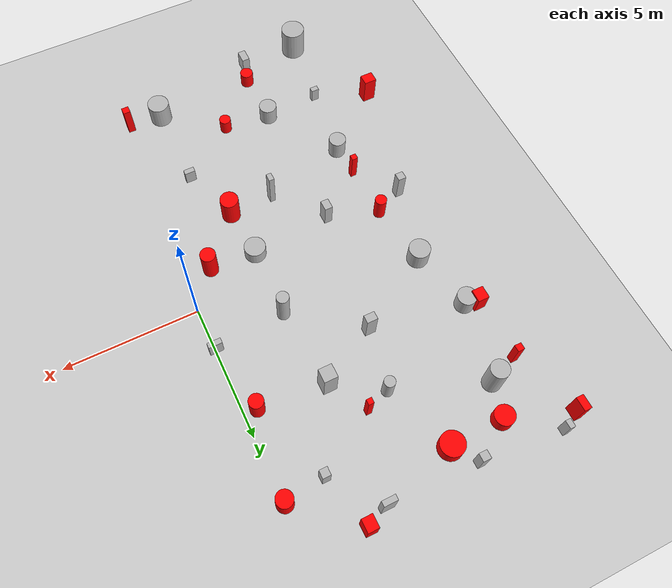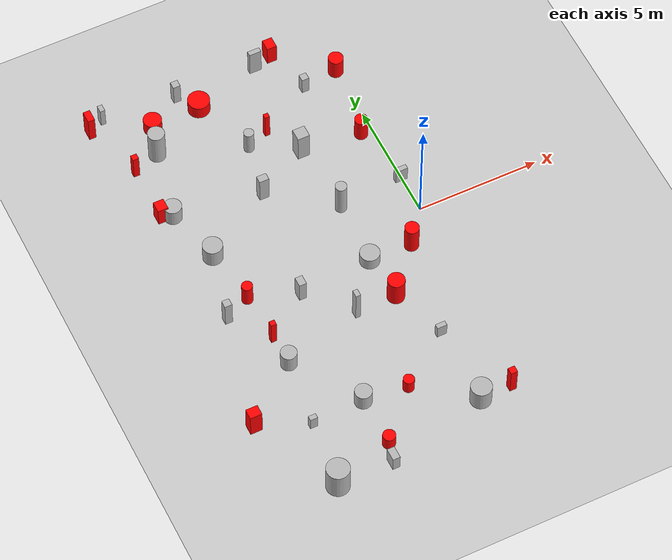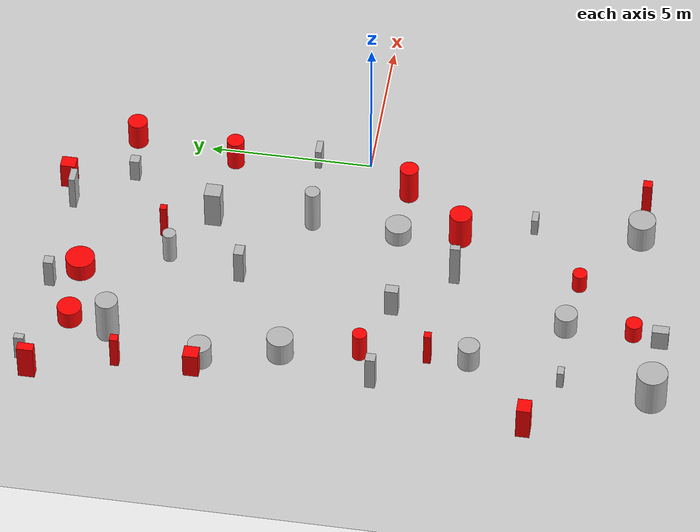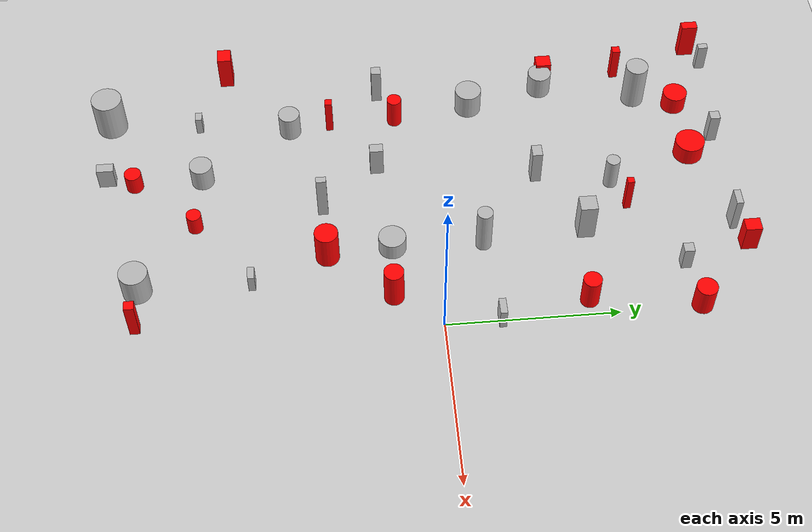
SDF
<sdf version="1.7">
 <world name="default">
  <model name="ground_plane">
   <static>1</static>
   <link name="link">
    <collision name="collision">
     <geometry><plane><normal>0 0 1</normal><size>100 100</size></plane></geometry>
     <surface>
      <contact><collide_bitmask>65535</collide_bitmask></contact>
      <friction><ode><mu>100</mu><mu2>50</mu2></ode></friction>
     </surface>
    </collision>
    <visual name="visual">
     <cast_shadows>0</cast_shadows>
     <geometry><plane><normal>0 0 1</normal><size>100 100</size></plane></geometry>
     <material>
      <script><uri>file://media/materials/scripts/gazebo.material</uri><name>Gazebo/Grey</name></script>
     </material>
    </visual>
   </link>
  </model>
  <model name="cylinder_3_0.9_0.9_1.3">
   <static>true</static>
   <pose>-8.257414005969185 -9.595632051193485 0.6390783754749252 0 0 0</pose>
   <link name="link">
    <collision name="collision">
     <geometry>
      <cylinder><radius>0.46100364447404574</radius><length>1.2781567509498504</length></cylinder>
     </geometry>
     <surface>
      <friction><ode><mu>1.0</mu><mu2>1.0</mu2></ode></friction>
      <contact><ode><kp>1e+5</kp><kd>1</kd></ode></contact>
     </surface>
    </collision>
    <visual name="visual">
     <geometry>
      <cylinder><radius>0.46100364447404574</radius><length>1.2781567509498504</length></cylinder>
     </geometry>
    </visual>
    <inertial>
     <mass>1.0</mass>
     <inertia><ixx>0.145833</ixx><ixy>0</ixy><ixz>0</ixz><iyy>0.145833</iyy><iyz>0</iyz><izz>0.125</izz></inertia>
    </inertial>
   </link>
  </model>
  <model name="cylinder_6_0.4_0.4_1.1">
   <static>true</static>
   <pose>-4.70888775790746 5.484673788684333 0.5342169744343243 0 0 0</pose>
   <link name="link">
    <collision name="collision">
     <geometry>
      <cylinder><radius>0.20563694013090655</radius><length>1.0684339488686485</length></cylinder>
     </geometry>
     <surface>
      <friction><ode><mu>1.0</mu><mu2>1.0</mu2></ode></friction>
      <contact><ode><kp>1e+5</kp><kd>1</kd></ode></contact>
     </surface>
    </collision>
    <visual name="visual">
     <geometry>
      <cylinder><radius>0.20563694013090655</radius><length>1.0684339488686485</length></cylinder>
     </geometry>
    </visual>
    <inertial>
     <mass>1.0</mass>
     <inertia><ixx>0.145833</ixx><ixy>0</ixy><ixz>0</ixz><iyy>0.145833</iyy><iyz>0</iyz><izz>0.125</izz></inertia>
    </inertial>
   </link>
  </model>
  <model name="cylinder_8_0.8_0.8_0.6">
   <static>true</static>
   <pose>-2.80984198852428 -1.259360924013171 0.2801127358146349 0 0 0</pose>
   <link name="link">
    <collision name="collision">
     <geometry>
      <cylinder><radius>0.4000300146337003</radius><length>0.5602254716292698</length></cylinder>
     </geometry>
     <surface>
      <friction><ode><mu>1.0</mu><mu2>1.0</mu2></ode></friction>
      <contact><ode><kp>1e+5</kp><kd>1</kd></ode></contact>
     </surface>
    </collision>
    <visual name="visual">
     <geometry>
      <cylinder><radius>0.4000300146337003</radius><length>0.5602254716292698</length></cylinder>
     </geometry>
    </visual>
    <inertial>
     <mass>1.0</mass>
     <inertia><ixx>0.145833</ixx><ixy>0</ixy><ixz>0</ixz><iyy>0.145833</iyy><iyz>0</iyz><izz>0.125</izz></inertia>
    </inertial>
   </link>
  </model>
  <model name="cylinder_9_0.5_0.5_1.5">
   <static>true</static>
   <pose>-2.725784581147548 1.4039354083575937 0.7441869190296131 0 0 0</pose>
   <link name="link">
    <collision name="collision">
     <geometry>
      <cylinder><radius>0.23061344322440844</radius><length>1.4883738380592262</length></cylinder>
     </geometry>
     <surface>
      <friction><ode><mu>1.0</mu><mu2>1.0</mu2></ode></friction>
      <contact><ode><kp>1e+5</kp><kd>1</kd></ode></contact>
     </surface>
    </collision>
    <visual name="visual">
     <geometry>
      <cylinder><radius>0.23061344322440844</radius><length>1.4883738380592262</length></cylinder>
     </geometry>
    </visual>
    <inertial>
     <mass>1.0</mass>
     <inertia><ixx>0.145833</ixx><ixy>0</ixy><ixz>0</ixz><iyy>0.145833</iyy><iyz>0</iyz><izz>0.125</izz></inertia>
    </inertial>
   </link>
  </model>
  <model name="cylinder_10_0.7_0.7_0.8">
   <static>true</static>
   <pose>-5.822464878103306 -6.773809642300074 0.37664580126989106 0 0 0</pose>
   <link name="link">
    <collision name="collision">
     <geometry>
      <cylinder><radius>0.3398932318568919</radius><length>0.7532916025397821</length></cylinder>
     </geometry>
     <surface>
      <friction><ode><mu>1.0</mu><mu2>1.0</mu2></ode></friction>
      <contact><ode><kp>1e+5</kp><kd>1</kd></ode></contact>
     </surface>
    </collision>
    <visual name="visual">
     <geometry>
      <cylinder><radius>0.3398932318568919</radius><length>0.7532916025397821</length></cylinder>
     </geometry>
    </visual>
    <inertial>
     <mass>1.0</mass>
     <inertia><ixx>0.145833</ixx><ixy>0</ixy><ixz>0</ixz><iyy>0.145833</iyy><iyz>0</iyz><izz>0.125</izz></inertia>
    </inertial>
   </link>
  </model>
  <model name="cylinder_11_0.7_0.7_1.5">
   <static>true</static>
   <pose>-8.057974484138775 6.758898149976076 0.7382297325066979 0 0 0</pose>
   <link name="link">
    <collision name="collision">
     <geometry>
      <cylinder><radius>0.3405953604943105</radius><length>1.4764594650133958</length></cylinder>
     </geometry>
     <surface>
      <friction><ode><mu>1.0</mu><mu2>1.0</mu2></ode></friction>
      <contact><ode><kp>1e+5</kp><kd>1</kd></ode></contact>
     </surface>
    </collision>
    <visual name="visual">
     <geometry>
      <cylinder><radius>0.3405953604943105</radius><length>1.4764594650133958</length></cylinder>
     </geometry>
    </visual>
    <inertial>
     <mass>1.0</mass>
     <inertia><ixx>0.145833</ixx><ixy>0</ixy><ixz>0</ixz><iyy>0.145833</iyy><iyz>0</iyz><izz>0.125</izz></inertia>
    </inertial>
   </link>
  </model>
  <model name="cylinder_13_0.6_0.6_0.8">
   <static>true</static>
   <pose>-7.596068775736622 -4.077196049557101 0.408991589696988 0 0 0</pose>
   <link name="link">
    <collision name="collision">
     <geometry><cylinder><radius>0.324278898354401</radius><length>0.817983179393976</length></cylinder></geometry>
     <surface>
      <friction><ode><mu>1.0</mu><mu2>1.0</mu2></ode></friction>
      <contact><ode><kp>1e+5</kp><kd>1</kd></ode></contact>
     </surface>
    </collision>
    <visual name="visual">
     <geometry><cylinder><radius>0.324278898354401</radius><length>0.817983179393976</length></cylinder></geometry>
    </visual>
    <inertial>
     <mass>1.0</mass>
     <inertia><ixx>0.145833</ixx><ixy>0</ixy><ixz>0</ixz><iyy>0.145833</iyy><iyz>0</iyz><izz>0.125</izz></inertia>
    </inertial>
   </link>
  </model>
  <model name="cylinder_14_0.7_0.7_0.8">
   <static>true</static>
   <pose>-8.717050073024312 3.849442387400398 0.3826947454697227 0 0 0</pose>
   <link name="link">
    <collision name="collision">
     <geometry>
      <cylinder><radius>0.3569744160400099</radius><length>0.7653894909394454</length></cylinder>
     </geometry>
     <surface>
      <friction><ode><mu>1.0</mu><mu2>1.0</mu2></ode></friction>
      <contact><ode><kp>1e+5</kp><kd>1</kd></ode></contact>
     </surface>
    </collision>
    <visual name="visual">
     <geometry>
      <cylinder><radius>0.3569744160400099</radius><length>0.7653894909394454</length></cylinder>
     </geometry>
    </visual>
    <inertial>
     <mass>1.0</mass>
     <inertia><ixx>0.145833</ixx><ixy>0</ixy><ixz>0</ixz><iyy>0.145833</iyy><iyz>0</iyz><izz>0.125</izz></inertia>
    </inertial>
   </link>
  </model>
  <model name="cylinder_15_0.8_0.8_0.8">
   <static>true</static>
   <pose>-8.121189784831166 1.5189299111235854 0.40928447622566183 0 0 0</pose>
   <link name="link">
    <collision name="collision">
     <geometry>
      <cylinder><radius>0.4002231139891045</radius><length>0.8185689524513237</length></cylinder>
     </geometry>
     <surface>
      <friction><ode><mu>1.0</mu><mu2>1.0</mu2></ode></friction>
      <contact><ode><kp>1e+5</kp><kd>1</kd></ode></contact>
     </surface>
    </collision>
    <visual name="visual">
     <geometry>
      <cylinder><radius>0.4002231139891045</radius><length>0.8185689524513237</length></cylinder>
     </geometry>
    </visual>
    <inertial>
     <mass>1.0</mass>
     <inertia><ixx>0.145833</ixx><ixy>0</ixy><ixz>0</ixz><iyy>0.145833</iyy><iyz>0</iyz><izz>0.125</izz></inertia>
    </inertial>
   </link>
  </model>
  <model name="cylinder_22_0.8_0.8_1.0">
   <static>true</static>
   <pose>-1.8563340554800067 -8.61666009089724 0.4767713413390344 0 0 0</pose>
   <link name="link">
    <collision name="collision">
     <geometry>
      <cylinder><radius>0.4166166798411044</radius><length>0.9535426826780689</length></cylinder>
     </geometry>
     <surface>
      <friction><ode><mu>1.0</mu><mu2>1.0</mu2></ode></friction>
      <contact><ode><kp>1e+5</kp><kd>1</kd></ode></contact>
     </surface>
    </collision>
    <visual name="visual">
     <geometry>
      <cylinder><radius>0.4166166798411044</radius><length>0.9535426826780689</length></cylinder>
     </geometry>
    </visual>
    <inertial>
     <mass>1.0</mass>
     <inertia><ixx>0.145833</ixx><ixy>0</ixy><ixz>0</ixz><iyy>0.145833</iyy><iyz>0</iyz><izz>0.125</izz></inertia>
    </inertial>
   </link>
  </model>
  <model name="box_0_0.3_0.5_0.7">
   <static>true</static>
   <pose>-6.000069502071998 -9.62956411078772 0.36196234403019006 0 0 0</pose>
   <link name="link">
    <collision name="collision">
     <geometry><box><size>0.3 0.5 0.7</size></box></geometry>
     <surface>
      <friction><ode><mu>1.0</mu><mu2>1.0</mu2></ode></friction>
      <contact><ode><kp>1e+5</kp><kd>1</kd></ode></contact>
     </surface>
    </collision>
    <visual name="visual"><geometry><box><size>0.3 0.5 0.7</size></box></geometry></visual>
    <inertial>
     <mass>1.0</mass>
     <inertia>
      <ixx>0.166667</ixx>
      <ixy>0</ixy>
      <ixz>0</ixz>
      <iyy>0.166667</iyy>
      <iyz>0</iyz>
      <izz>0.166667</izz>
     </inertia>
    </inertial>
   </link>
  </model>
  <model name="box_2_0.3_0.3_1.0">
   <static>true</static>
   <pose>-6.276139882393277 8.887447799678672 0.49522940430878354 0 0 0</pose>
   <link name="link">
    <collision name="collision">
     <geometry><box><size>0.3 0.3 1.0</size></box></geometry>
     <surface>
      <friction><ode><mu>1.0</mu><mu2>1.0</mu2></ode></friction>
      <contact><ode><kp>1e+5</kp><kd>1</kd></ode></contact>
     </surface>
    </collision>
    <visual name="visual"><geometry><box><size>0.3 0.3 1.0</size></box></geometry></visual>
    <inertial>
     <mass>1.0</mass>
     <inertia>
      <ixx>0.166667</ixx>
      <ixy>0</ixy>
      <ixz>0</ixz>
      <iyy>0.166667</iyy>
      <iyz>0</iyz>
      <izz>0.166667</izz>
     </inertia>
    </inertial>
   </link>
  </model>
  <model name="box_3_0.3_0.3_1.2">
   <static>true</static>
   <pose>-8.839416793522489 -1.3116674888375854 0.5981717444077297 0 0 0</pose>
   <link name="link">
    <collision name="collision">
     <geometry><box><size>0.3 0.3 1.2</size></box></geometry>
     <surface>
      <friction><ode><mu>1.0</mu><mu2>1.0</mu2></ode></friction>
      <contact><ode><kp>1e+5</kp><kd>1</kd></ode></contact>
     </surface>
    </collision>
    <visual name="visual"><geometry><box><size>0.3 0.3 1.2</size></box></geometry></visual>
    <inertial>
     <mass>1.0</mass>
     <inertia>
      <ixx>0.166667</ixx>
      <ixy>0</ixy>
      <ixz>0</ixz>
      <iyy>0.166667</iyy>
      <iyz>0</iyz>
      <izz>0.166667</izz>
     </inertia>
    </inertial>
   </link>
  </model>
  <model name="box_5_0.3_0.4_1.0">
   <static>true</static>
   <pose>-5.850598491177812 -1.5062906249698749 0.48178771218240535 0 0 0</pose>
   <link name="link">
    <collision name="collision">
     <geometry><box><size>0.3 0.4 1.0</size></box></geometry>
     <surface>
      <friction><ode><mu>1.0</mu><mu2>1.0</mu2></ode></friction>
      <contact><ode><kp>1e+5</kp><kd>1</kd></ode></contact>
     </surface>
    </collision>
    <visual name="visual"><geometry><box><size>0.3 0.4 1.0</size></box></geometry></visual>
    <inertial>
     <mass>1.0</mass>
     <inertia>
      <ixx>0.166667</ixx>
      <ixy>0</ixy>
      <ixz>0</ixz>
      <iyy>0.166667</iyy>
      <iyz>0</iyz>
      <izz>0.166667</izz>
     </inertia>
    </inertial>
   </link>
  </model>
  <model name="box_7_0.5_0.2_1.2">
   <static>true</static>
   <pose>-2.8877452430008876 8.80863890505626 0.6243318099252737 0 0 0</pose>
   <link name="link">
    <collision name="collision">
     <geometry><box><size>0.5 0.2 1.2</size></box></geometry>
     <surface>
      <friction><ode><mu>1.0</mu><mu2>1.0</mu2></ode></friction>
      <contact><ode><kp>1e+5</kp><kd>1</kd></ode></contact>
     </surface>
    </collision>
    <visual name="visual"><geometry><box><size>0.5 0.2 1.2</size></box></geometry></visual>
    <inertial>
     <mass>1.0</mass>
     <inertia>
      <ixx>0.166667</ixx>
      <ixy>0</ixy>
      <ixz>0</ixz>
      <iyy>0.166667</iyy>
      <iyz>0</iyz>
      <izz>0.166667</izz>
     </inertia>
    </inertial>
   </link>
  </model>
  <model name="box_8_0.4_0.2_0.6">
   <static>true</static>
   <pose>-1.8551765717238524 -5.355317156581146 0.27671359089341263 0 0 0</pose>
   <link name="link">
    <collision name="collision">
     <geometry><box><size>0.4 0.2 0.6</size></box></geometry>
     <surface>
      <friction><ode><mu>1.0</mu><mu2>1.0</mu2></ode></friction>
      <contact><ode><kp>1e+5</kp><kd>1</kd></ode></contact>
     </surface>
    </collision>
    <visual name="visual"><geometry><box><size>0.4 0.2 0.6</size></box></geometry></visual>
    <inertial>
     <mass>1.0</mass>
     <inertia>
      <ixx>0.166667</ixx>
      <ixy>0</ixy>
      <ixz>0</ixz>
      <iyy>0.166667</iyy>
      <iyz>0</iyz>
      <izz>0.166667</izz>
     </inertia>
    </inertial>
   </link>
  </model>
  <model name="box_11_0.2_0.3_0.9">
   <static>true</static>
   <pose>-9.333907469066077 9.17965443726947 0.42835344520127144 0 0 0</pose>
   <link name="link">
    <collision name="collision">
     <geometry><box><size>0.2 0.3 0.9</size></box></geometry>
     <surface>
      <friction><ode><mu>1.0</mu><mu2>1.0</mu2></ode></friction>
      <contact><ode><kp>1e+5</kp><kd>1</kd></ode></contact>
     </surface>
    </collision>
    <visual name="visual"><geometry><box><size>0.2 0.3 0.9</size></box></geometry></visual>
    <inertial>
     <mass>1.0</mass>
     <inertia>
      <ixx>0.166667</ixx>
      <ixy>0</ixy>
      <ixz>0</ixz>
      <iyy>0.166667</iyy>
      <iyz>0</iyz>
      <izz>0.166667</izz>
     </inertia>
    </inertial>
   </link>
  </model>
  <model name="box_13_0.4_0.3_1.2">
   <static>true</static>
   <pose>-5.17162759846852 3.2500914306535194 0.5829295587795938 0 0 0</pose>
   <link name="link">
    <collision name="collision">
     <geometry><box><size>0.4 0.3 1.2</size></box></geometry>
     <surface>
      <friction><ode><mu>1.0</mu><mu2>1.0</mu2></ode></friction>
      <contact><ode><kp>1e+5</kp><kd>1</kd></ode></contact>
     </surface>
    </collision>
    <visual name="visual"><geometry><box><size>0.4 0.3 1.2</size></box></geometry></visual>
    <inertial>
     <mass>1.0</mass>
     <inertia>
      <ixx>0.166667</ixx>
      <ixy>0</ixy>
      <ixz>0</ixz>
      <iyy>0.166667</iyy>
      <iyz>0</iyz>
      <izz>0.166667</izz>
     </inertia>
    </inertial>
   </link>
  </model>
  <model name="box_18_0.5_0.5_1.3">
   <static>true</static>
   <pose>-2.962140076139148 4.428133359199048 0.6565269316237303 0 0 0</pose>
   <link name="link">
    <collision name="collision">
     <geometry><box><size>0.5 0.5 1.3</size></box></geometry>
     <surface>
      <friction><ode><mu>1.0</mu><mu2>1.0</mu2></ode></friction>
      <contact><ode><kp>1e+5</kp><kd>1</kd></ode></contact>
     </surface>
    </collision>
    <visual name="visual"><geometry><box><size>0.5 0.5 1.3</size></box></geometry></visual>
    <inertial>
     <mass>1.0</mass>
     <inertia>
      <ixx>0.166667</ixx>
      <ixy>0</ixy>
      <ixz>0</ixz>
      <iyy>0.166667</iyy>
      <iyz>0</iyz>
      <izz>0.166667</izz>
     </inertia>
    </inertial>
   </link>
  </model>
  <model name="box_19_0.5_0.2_0.7">
   <static>true</static>
   <pose>-0.0444618434931634 1.6216385934412614 0.33451270306458064 0 0 0</pose>
   <link name="link">
    <collision name="collision">
     <geometry><box><size>0.5 0.2 0.7</size></box></geometry>
     <surface>
      <friction><ode><mu>1.0</mu><mu2>1.0</mu2></ode></friction>
      <contact><ode><kp>1e+5</kp><kd>1</kd></ode></contact>
     </surface>
    </collision>
    <visual name="visual"><geometry><box><size>0.5 0.2 0.7</size></box></geometry></visual>
    <inertial>
     <mass>1.0</mass>
     <inertia>
      <ixx>0.166667</ixx>
      <ixy>0</ixy>
      <ixz>0</ixz>
      <iyy>0.166667</iyy>
      <iyz>0</iyz>
      <izz>0.166667</izz>
     </inertia>
    </inertial>
   </link>
  </model>
  <model name="box_20_0.3_0.3_0.8">
   <static>true</static>
   <pose>-1.525872930890543 7.142498350091348 0.38562603838093207 0 0 0</pose>
   <link name="link">
    <collision name="collision">
     <geometry><box><size>0.3 0.3 0.8</size></box></geometry>
     <surface>
      <friction><ode><mu>1.0</mu><mu2>1.0</mu2></ode></friction>
      <contact><ode><kp>1e+5</kp><kd>1</kd></ode></contact>
     </surface>
    </collision>
    <visual name="visual"><geometry><box><size>0.3 0.3 0.8</size></box></geometry></visual>
    <inertial>
     <mass>1.0</mass>
     <inertia>
      <ixx>0.166667</ixx>
      <ixy>0</ixy>
      <ixz>0</ixz>
      <iyy>0.166667</iyy>
      <iyz>0</iyz>
      <izz>0.166667</izz>
     </inertia>
    </inertial>
   </link>
  </model>
  <model name="box_22_0.3_0.2_0.6">
   <static>true</static>
   <pose>-7.951724830951672 -6.87233302264074 0.28767953454167017 0 0 0</pose>
   <link name="link">
    <collision name="collision">
     <geometry><box><size>0.3 0.2 0.6</size></box></geometry>
     <surface>
      <friction><ode><mu>1.0</mu><mu2>1.0</mu2></ode></friction>
      <contact><ode><kp>1e+5</kp><kd>1</kd></ode></contact>
     </surface>
    </collision>
    <visual name="visual"><geometry><box><size>0.3 0.2 0.6</size></box></geometry></visual>
    <inertial>
     <mass>1.0</mass>
     <inertia>
      <ixx>0.166667</ixx>
      <ixy>0</ixy>
      <ixz>0</ixz>
      <iyy>0.166667</iyy>
      <iyz>0</iyz>
      <izz>0.166667</izz>
     </inertia>
    </inertial>
   </link>
  </model>
  <model name="box_23_0.2_0.3_1.5">
   <static>true</static>
   <pose>-4.343262956478342 -3.207379116676017 0.73159864763019 0 0 0</pose>
   <link name="link">
    <collision name="collision">
     <geometry><box><size>0.2 0.3 1.5</size></box></geometry>
     <surface>
      <friction><ode><mu>1.0</mu><mu2>1.0</mu2></ode></friction>
      <contact><ode><kp>1e+5</kp><kd>1</kd></ode></contact>
     </surface>
    </collision>
    <visual name="visual"><geometry><box><size>0.2 0.3 1.5</size></box></geometry></visual>
    <inertial>
     <mass>1.0</mass>
     <inertia>
      <ixx>0.166667</ixx>
      <ixy>0</ixy>
      <ixz>0</ixz>
      <iyy>0.166667</iyy>
      <iyz>0</iyz>
      <izz>0.166667</izz>
     </inertia>
    </inertial>
   </link>
  </model>
  <model name="dynamic_cylinder_1_0.6_0.6_1.2">
   <pose>-1.0624607210760182 -1.3384510179746307 0.6158720927164464 0 0 0</pose>
   <link name="link">
    <collision name="collision">
     <geometry>
      <cylinder><radius>0.28697403487758666</radius><length>1.2317441854328928</length></cylinder>
     </geometry>
     <surface>
      <friction><ode><mu>1.0</mu><mu2>1.0</mu2></ode></friction>
      <contact><ode><kp>1e+5</kp><kd>1</kd></ode></contact>
     </surface>
    </collision>
    <visual name="visual">
     <geometry>
      <cylinder><radius>0.28697403487758666</radius><length>1.2317441854328928</length></cylinder>
     </geometry>
     <material><ambient>1 0 0 1</ambient><diffuse>1 0 0 1</diffuse><specular>0.5 0.5 0.5 1</specular></material>
    </visual>
    <inertial>
     <mass>1.0</mass>
     <inertia><ixx>0.145833</ixx><ixy>0</ixy><ixz>0</ixz><iyy>0.145833</iyy><iyz>0</iyz><izz>0.125</izz></inertia>
    </inertial>
    <gravity>0</gravity>
   </link>
   <plugin name="obstacle_motion" filename="/home/he/quad/navigation/DRL-robot-navigation/catkin_ws/src/multi_robot_scenario/plugins/libobstaclePathPlugin.so">
    <orientation>false</orientation>
    <loop>1</loop>
    <velocity>0.4182640973994589</velocity>
    <path>
     <waypoint>-1.0624607210760182 -1.3384510179746307 0.6158720927164464</waypoint>
     <waypoint>-2.8530624064409116 8.29941540631237 0.6158720927164464</waypoint>
    </path>
   </plugin>
   <static>0</static>
  </model>
  <model name="dynamic_cylinder_3_0.6_0.6_0.9">
   <pose>-0.036408684741131125 7.335770865181914 0.4583458784543555 0 0 0</pose>
   <link name="link">
    <collision name="collision">
     <geometry><cylinder><radius>0.304457582823956</radius><length>0.916691756908711</length></cylinder></geometry>
     <surface>
      <friction><ode><mu>1.0</mu><mu2>1.0</mu2></ode></friction>
      <contact><ode><kp>1e+5</kp><kd>1</kd></ode></contact>
     </surface>
    </collision>
    <visual name="visual">
     <geometry><cylinder><radius>0.304457582823956</radius><length>0.916691756908711</length></cylinder></geometry>
     <material><ambient>1 0 0 1</ambient><diffuse>1 0 0 1</diffuse><specular>0.5 0.5 0.5 1</specular></material>
    </visual>
    <inertial>
     <mass>1.0</mass>
     <inertia><ixx>0.145833</ixx><ixy>0</ixy><ixz>0</ixz><iyy>0.145833</iyy><iyz>0</iyz><izz>0.125</izz></inertia>
    </inertial>
    <gravity>0</gravity>
   </link>
   <plugin name="obstacle_motion" filename="/home/he/quad/navigation/DRL-robot-navigation/catkin_ws/src/multi_robot_scenario/plugins/libobstaclePathPlugin.so">
    <orientation>false</orientation>
    <loop>1</loop>
    <velocity>0.4432515845386854</velocity>
    <path>
     <waypoint>-0.036408684741131125 7.335770865181914 0.4583458784543555</waypoint>
     <waypoint>2.554695123905688 -1.971441013889601 0.4583458784543555</waypoint>
    </path>
   </plugin>
   <static>0</static>
  </model>
  <model name="dynamic_cylinder_4_0.5_0.5_0.6">
   <pose>-5.770904084351729 -8.812336239884216 0.310060091081738 0 0 0</pose>
   <link name="link">
    <collision name="collision">
     <geometry>
      <cylinder><radius>0.25261162085457317</radius><length>0.620120182163476</length></cylinder>
     </geometry>
     <surface>
      <friction><ode><mu>1.0</mu><mu2>1.0</mu2></ode></friction>
      <contact><ode><kp>1e+5</kp><kd>1</kd></ode></contact>
     </surface>
    </collision>
    <visual name="visual">
     <geometry>
      <cylinder><radius>0.25261162085457317</radius><length>0.620120182163476</length></cylinder>
     </geometry>
     <material><ambient>1 0 0 1</ambient><diffuse>1 0 0 1</diffuse><specular>0.5 0.5 0.5 1</specular></material>
    </visual>
    <inertial>
     <mass>1.0</mass>
     <inertia><ixx>0.145833</ixx><ixy>0</ixy><ixz>0</ixz><iyy>0.145833</iyy><iyz>0</iyz><izz>0.125</izz></inertia>
    </inertial>
    <gravity>0</gravity>
   </link>
   <plugin name="obstacle_motion" filename="/home/he/quad/navigation/DRL-robot-navigation/catkin_ws/src/multi_robot_scenario/plugins/libobstaclePathPlugin.so">
    <orientation>false</orientation>
    <loop>1</loop>
    <velocity>0.30034212244883446</velocity>
    <path>
     <waypoint>-5.770904084351729 -8.812336239884216 0.310060091081738</waypoint>
     <waypoint>7.520536958411483 8.370929023806998 0.310060091081738</waypoint>
    </path>
   </plugin>
   <static>0</static>
  </model>
  <model name="dynamic_cylinder_5_0.7_0.7_0.6">
   <pose>-7.682030623482405 7.997334860000606 0.2982254303486921 0 0 0</pose>
   <link name="link">
    <collision name="collision">
     <geometry>
      <cylinder><radius>0.3699518320967488</radius><length>0.5964508606973842</length></cylinder>
     </geometry>
     <surface>
      <friction><ode><mu>1.0</mu><mu2>1.0</mu2></ode></friction>
      <contact><ode><kp>1e+5</kp><kd>1</kd></ode></contact>
     </surface>
    </collision>
    <visual name="visual">
     <geometry>
      <cylinder><radius>0.3699518320967488</radius><length>0.5964508606973842</length></cylinder>
     </geometry>
     <material><ambient>1 0 0 1</ambient><diffuse>1 0 0 1</diffuse><specular>0.5 0.5 0.5 1</specular></material>
    </visual>
    <inertial>
     <mass>1.0</mass>
     <inertia><ixx>0.145833</ixx><ixy>0</ixy><ixz>0</ixz><iyy>0.145833</iyy><iyz>0</iyz><izz>0.125</izz></inertia>
    </inertial>
    <gravity>0</gravity>
   </link>
   <plugin name="obstacle_motion" filename="/home/he/quad/navigation/DRL-robot-navigation/catkin_ws/src/multi_robot_scenario/plugins/libobstaclePathPlugin.so">
    <orientation>false</orientation>
    <loop>1</loop>
    <velocity>0.4590411947580757</velocity>
    <path>
     <waypoint>-7.682030623482405 7.997334860000606 0.2982254303486921</waypoint>
     <waypoint>-8.86245481709289 9.609713269380137 0.2982254303486921</waypoint>
    </path>
   </plugin>
   <static>0</static>
  </model>
  <model name="dynamic_cylinder_6_0.7_0.7_1.2">
   <pose>-2.641650243642532 -3.1531524674968425 0.5786594583085709 0 0 0</pose>
   <link name="link">
    <collision name="collision">
     <geometry>
      <cylinder><radius>0.34548969354742115</radius><length>1.1573189166171418</length></cylinder>
     </geometry>
     <surface>
      <friction><ode><mu>1.0</mu><mu2>1.0</mu2></ode></friction>
      <contact><ode><kp>1e+5</kp><kd>1</kd></ode></contact>
     </surface>
    </collision>
    <visual name="visual">
     <geometry>
      <cylinder><radius>0.34548969354742115</radius><length>1.1573189166171418</length></cylinder>
     </geometry>
     <material><ambient>1 0 0 1</ambient><diffuse>1 0 0 1</diffuse><specular>0.5 0.5 0.5 1</specular></material>
    </visual>
    <inertial>
     <mass>1.0</mass>
     <inertia><ixx>0.145833</ixx><ixy>0</ixy><ixz>0</ixz><iyy>0.145833</iyy><iyz>0</iyz><izz>0.125</izz></inertia>
    </inertial>
    <gravity>0</gravity>
   </link>
   <plugin name="obstacle_motion" filename="/home/he/quad/navigation/DRL-robot-navigation/catkin_ws/src/multi_robot_scenario/plugins/libobstaclePathPlugin.so">
    <orientation>false</orientation>
    <loop>1</loop>
    <velocity>0.355197825054824</velocity>
    <path>
     <waypoint>-2.641650243642532 -3.1531524674968425 0.5786594583085709</waypoint>
     <waypoint>5.147282864754175 -3.7085340999142558 0.5786594583085709</waypoint>
    </path>
   </plugin>
   <static>0</static>
  </model>
  <model name="dynamic_cylinder_7_0.9_0.9_0.6">
   <pose>-5.662594998179187 8.062992937031431 0.299866473617377 0 0 0</pose>
   <link name="link">
    <collision name="collision">
     <geometry>
      <cylinder><radius>0.44600673076092556</radius><length>0.599732947234754</length></cylinder>
     </geometry>
     <surface>
      <friction><ode><mu>1.0</mu><mu2>1.0</mu2></ode></friction>
      <contact><ode><kp>1e+5</kp><kd>1</kd></ode></contact>
     </surface>
    </collision>
    <visual name="visual">
     <geometry>
      <cylinder><radius>0.44600673076092556</radius><length>0.599732947234754</length></cylinder>
     </geometry>
     <material><ambient>1 0 0 1</ambient><diffuse>1 0 0 1</diffuse><specular>0.5 0.5 0.5 1</specular></material>
    </visual>
    <inertial>
     <mass>1.0</mass>
     <inertia><ixx>0.145833</ixx><ixy>0</ixy><ixz>0</ixz><iyy>0.145833</iyy><iyz>0</iyz><izz>0.125</izz></inertia>
    </inertial>
    <gravity>0</gravity>
   </link>
   <plugin name="obstacle_motion" filename="/home/he/quad/navigation/DRL-robot-navigation/catkin_ws/src/multi_robot_scenario/plugins/libobstaclePathPlugin.so">
    <orientation>false</orientation>
    <loop>1</loop>
    <velocity>0.34267673512545316</velocity>
    <path>
     <waypoint>-5.662594998179187 8.062992937031431 0.299866473617377</waypoint>
     <waypoint>-9.14151618782336 -3.3385593105136246 0.299866473617377</waypoint>
    </path>
   </plugin>
   <static>0</static>
  </model>
  <model name="dynamic_cylinder_8_0.4_0.4_0.6">
   <pose>-4.036252806738718 -6.981302053779168 0.32019197889967344 0 0 0</pose>
   <link name="link">
    <collision name="collision">
     <geometry>
      <cylinder><radius>0.2206555893480122</radius><length>0.6403839577993469</length></cylinder>
     </geometry>
     <surface>
      <friction><ode><mu>1.0</mu><mu2>1.0</mu2></ode></friction>
      <contact><ode><kp>1e+5</kp><kd>1</kd></ode></contact>
     </surface>
    </collision>
    <visual name="visual">
     <geometry>
      <cylinder><radius>0.2206555893480122</radius><length>0.6403839577993469</length></cylinder>
     </geometry>
     <material><ambient>1 0 0 1</ambient><diffuse>1 0 0 1</diffuse><specular>0.5 0.5 0.5 1</specular></material>
    </visual>
    <inertial>
     <mass>1.0</mass>
     <inertia><ixx>0.145833</ixx><ixy>0</ixy><ixz>0</ixz><iyy>0.145833</iyy><iyz>0</iyz><izz>0.125</izz></inertia>
    </inertial>
    <gravity>0</gravity>
   </link>
   <plugin name="obstacle_motion" filename="/home/he/quad/navigation/DRL-robot-navigation/catkin_ws/src/multi_robot_scenario/plugins/libobstaclePathPlugin.so">
    <orientation>false</orientation>
    <loop>1</loop>
    <velocity>0.2682087347232506</velocity>
    <path>
     <waypoint>-4.036252806738718 -6.981302053779168 0.32019197889967344</waypoint>
     <waypoint>-3.3946592860620157 6.277602838412719 0.32019197889967344</waypoint>
    </path>
   </plugin>
   <static>0</static>
  </model>
  <model name="dynamic_cylinder_10_0.4_0.4_1.0">
   <pose>-7.770078854025688 -0.8206027963586333 0.4912921208560505 0 0 0</pose>
   <link name="link">
    <collision name="collision">
     <geometry>
      <cylinder><radius>0.22075479763771685</radius><length>0.982584241712101</length></cylinder>
     </geometry>
     <surface>
      <friction><ode><mu>1.0</mu><mu2>1.0</mu2></ode></friction>
      <contact><ode><kp>1e+5</kp><kd>1</kd></ode></contact>
     </surface>
    </collision>
    <visual name="visual">
     <geometry>
      <cylinder><radius>0.22075479763771685</radius><length>0.982584241712101</length></cylinder>
     </geometry>
     <material><ambient>1 0 0 1</ambient><diffuse>1 0 0 1</diffuse><specular>0.5 0.5 0.5 1</specular></material>
    </visual>
    <inertial>
     <mass>1.0</mass>
     <inertia><ixx>0.145833</ixx><ixy>0</ixy><ixz>0</ixz><iyy>0.145833</iyy><iyz>0</iyz><izz>0.125</izz></inertia>
    </inertial>
    <gravity>0</gravity>
   </link>
   <plugin name="obstacle_motion" filename="/home/he/quad/navigation/DRL-robot-navigation/catkin_ws/src/multi_robot_scenario/plugins/libobstaclePathPlugin.so">
    <orientation>false</orientation>
    <loop>1</loop>
    <velocity>0.41894829065878025</velocity>
    <path>
     <waypoint>-7.770078854025688 -0.8206027963586333 0.4912921208560505</waypoint>
     <waypoint>-3.5533292390676374 -3.669985090927872 0.4912921208560505</waypoint>
    </path>
   </plugin>
   <static>0</static>
  </model>
  <model name="dynamic_cylinder_14_0.5_0.5_1.0">
   <pose>-0.483476082855546 4.175407818820974 0.5100407083178365 0 0 0</pose>
   <link name="link">
    <collision name="collision">
     <geometry>
      <cylinder><radius>0.26732408357625204</radius><length>1.020081416635673</length></cylinder>
     </geometry>
     <surface>
      <friction><ode><mu>1.0</mu><mu2>1.0</mu2></ode></friction>
      <contact><ode><kp>1e+5</kp><kd>1</kd></ode></contact>
     </surface>
    </collision>
    <visual name="visual">
     <geometry>
      <cylinder><radius>0.26732408357625204</radius><length>1.020081416635673</length></cylinder>
     </geometry>
     <material><ambient>1 0 0 1</ambient><diffuse>1 0 0 1</diffuse><specular>0.5 0.5 0.5 1</specular></material>
    </visual>
    <inertial>
     <mass>1.0</mass>
     <inertia><ixx>0.145833</ixx><ixy>0</ixy><ixz>0</ixz><iyy>0.145833</iyy><iyz>0</iyz><izz>0.125</izz></inertia>
    </inertial>
    <gravity>0</gravity>
   </link>
   <plugin name="obstacle_motion" filename="/home/he/quad/navigation/DRL-robot-navigation/catkin_ws/src/multi_robot_scenario/plugins/libobstaclePathPlugin.so">
    <orientation>false</orientation>
    <loop>1</loop>
    <velocity>0.2091983144977154</velocity>
    <path>
     <waypoint>-0.483476082855546 4.175407818820974 0.5100407083178365</waypoint>
     <waypoint>-9.120491359518187 7.5904296604746015 0.5100407083178365</waypoint>
    </path>
   </plugin>
   <static>0</static>
  </model>
  <model name="dynamic_box_1_0.3_0.3_1.2">
   <pose>-0.5708536129146928 -8.638138015157867 0.6096945310019868 0 0 0</pose>
   <link name="link">
    <collision name="collision">
     <geometry><box><size>0.2763147203352873 0.27959099736111426 1.2193890620039736</size></box></geometry>
     <surface>
      <friction><ode><mu>1.0</mu><mu2>1.0</mu2></ode></friction>
      <contact><ode><kp>1e+5</kp><kd>1</kd></ode></contact>
     </surface>
    </collision>
    <visual name="visual">
     <geometry><box><size>0.2763147203352873 0.27959099736111426 1.2193890620039736</size></box></geometry>
     <material><ambient>1 0 0 1</ambient><diffuse>1 0 0 1</diffuse><specular>0.5 0.5 0.5 1</specular></material>
    </visual>
    <inertial>
     <mass>1.0</mass>
     <inertia>
      <ixx>0.166667</ixx>
      <ixy>0</ixy>
      <ixz>0</ixz>
      <iyy>0.166667</iyy>
      <iyz>0</iyz>
      <izz>0.166667</izz>
     </inertia>
    </inertial>
    <gravity>0</gravity>
   </link>
   <plugin name="obstacle_motion" filename="/home/he/quad/navigation/DRL-robot-navigation/catkin_ws/src/multi_robot_scenario/plugins/libobstaclePathPlugin.so">
    <orientation>false</orientation>
    <loop>1</loop>
    <velocity>0.3049978530890507</velocity>
    <path>
     <waypoint>-0.5708536129146928 -8.638138015157867 0.6096945310019868</waypoint>
     <waypoint>8.877017147016389 9.298498816968792 0.6096945310019868</waypoint>
    </path>
   </plugin>
   <static>0</static>
  </model>
  <model name="dynamic_box_2_0.2_0.2_1.2">
   <pose>-3.7874156341738736 5.824548620382245 0.6024740309613797 0 0 0</pose>
   <link name="link">
    <collision name="collision">
     <geometry><box><size>0.20159301428440035 0.20340653855365778 1.2049480619227595</size></box></geometry>
     <surface>
      <friction><ode><mu>1.0</mu><mu2>1.0</mu2></ode></friction>
      <contact><ode><kp>1e+5</kp><kd>1</kd></ode></contact>
     </surface>
    </collision>
    <visual name="visual">
     <geometry><box><size>0.20159301428440035 0.20340653855365778 1.2049480619227595</size></box></geometry>
     <material><ambient>1 0 0 1</ambient><diffuse>1 0 0 1</diffuse><specular>0.5 0.5 0.5 1</specular></material>
    </visual>
    <inertial>
     <mass>1.0</mass>
     <inertia>
      <ixx>0.166667</ixx>
      <ixy>0</ixy>
      <ixz>0</ixz>
      <iyy>0.166667</iyy>
      <iyz>0</iyz>
      <izz>0.166667</izz>
     </inertia>
    </inertial>
    <gravity>0</gravity>
   </link>
   <plugin name="obstacle_motion" filename="/home/he/quad/navigation/DRL-robot-navigation/catkin_ws/src/multi_robot_scenario/plugins/libobstaclePathPlugin.so">
    <orientation>false</orientation>
    <loop>1</loop>
    <velocity>0.32559105907100794</velocity>
    <path>
     <waypoint>-3.7874156341738736 5.824548620382245 0.6024740309613797</waypoint>
     <waypoint>4.3028650405072 1.1610247331452506 0.6024740309613797</waypoint>
    </path>
   </plugin>
   <static>0</static>
  </model>
  <model name="dynamic_box_3_0.3_0.5_1.2">
   <pose>-9.98671562819591 8.833355907795127 0.5957540539157676 0 0 0</pose>
   <link name="link">
    <collision name="collision">
     <geometry><box><size>0.27939487940084007 0.4925284040636139 1.1915081078315353</size></box></geometry>
     <surface>
      <friction><ode><mu>1.0</mu><mu2>1.0</mu2></ode></friction>
      <contact><ode><kp>1e+5</kp><kd>1</kd></ode></contact>
     </surface>
    </collision>
    <visual name="visual">
     <geometry><box><size>0.27939487940084007 0.4925284040636139 1.1915081078315353</size></box></geometry>
     <material><ambient>1 0 0 1</ambient><diffuse>1 0 0 1</diffuse><specular>0.5 0.5 0.5 1</specular></material>
    </visual>
    <inertial>
     <mass>1.0</mass>
     <inertia>
      <ixx>0.166667</ixx>
      <ixy>0</ixy>
      <ixz>0</ixz>
      <iyy>0.166667</iyy>
      <iyz>0</iyz>
      <izz>0.166667</izz>
     </inertia>
    </inertial>
    <gravity>0</gravity>
   </link>
   <plugin name="obstacle_motion" filename="/home/he/quad/navigation/DRL-robot-navigation/catkin_ws/src/multi_robot_scenario/plugins/libobstaclePathPlugin.so">
    <orientation>false</orientation>
    <loop>1</loop>
    <velocity>0.23267112165239787</velocity>
    <path>
     <waypoint>-9.98671562819591 8.833355907795127 0.5957540539157676</waypoint>
     <waypoint>-4.4334940335977135 -6.28204794289005 0.5957540539157676</waypoint>
    </path>
   </plugin>
   <static>0</static>
  </model>
  <model name="dynamic_box_5_0.4_0.5_0.9">
   <pose>-9.141876191948837 4.017112988954754 0.4271124109136314 0 0 0</pose>
   <link name="link">
    <collision name="collision">
     <geometry><box><size>0.4264703312412705 0.46550655536354185 0.8542248218272628</size></box></geometry>
     <surface>
      <friction><ode><mu>1.0</mu><mu2>1.0</mu2></ode></friction>
      <contact><ode><kp>1e+5</kp><kd>1</kd></ode></contact>
     </surface>
    </collision>
    <visual name="visual">
     <geometry><box><size>0.4264703312412705 0.46550655536354185 0.8542248218272628</size></box></geometry>
     <material><ambient>1 0 0 1</ambient><diffuse>1 0 0 1</diffuse><specular>0.5 0.5 0.5 1</specular></material>
    </visual>
    <inertial>
     <mass>1.0</mass>
     <inertia>
      <ixx>0.166667</ixx>
      <ixy>0</ixy>
      <ixz>0</ixz>
      <iyy>0.166667</iyy>
      <iyz>0</iyz>
      <izz>0.166667</izz>
     </inertia>
    </inertial>
    <gravity>0</gravity>
   </link>
   <plugin name="obstacle_motion" filename="/home/he/quad/navigation/DRL-robot-navigation/catkin_ws/src/multi_robot_scenario/plugins/libobstaclePathPlugin.so">
    <orientation>false</orientation>
    <loop>1</loop>
    <velocity>0.2360832034938409</velocity>
    <path>
     <waypoint>-9.141876191948837 4.017112988954754 0.4271124109136314</waypoint>
     <waypoint>8.265686817709618 0.49154134957252005 0.4271124109136314</waypoint>
    </path>
   </plugin>
   <static>0</static>
  </model>
  <model name="dynamic_box_6_0.5_0.4_1.1">
   <pose>-9.958707288511565 -6.021773306662808 0.5691950528884743 0 0 0</pose>
   <link name="link">
    <collision name="collision">
     <geometry><box><size>0.4843465661334769 0.41856761898484607 1.1383901057769485</size></box></geometry>
     <surface>
      <friction><ode><mu>1.0</mu><mu2>1.0</mu2></ode></friction>
      <contact><ode><kp>1e+5</kp><kd>1</kd></ode></contact>
     </surface>
    </collision>
    <visual name="visual">
     <geometry><box><size>0.4843465661334769 0.41856761898484607 1.1383901057769485</size></box></geometry>
     <material><ambient>1 0 0 1</ambient><diffuse>1 0 0 1</diffuse><specular>0.5 0.5 0.5 1</specular></material>
    </visual>
    <inertial>
     <mass>1.0</mass>
     <inertia>
      <ixx>0.166667</ixx>
      <ixy>0</ixy>
      <ixz>0</ixz>
      <iyy>0.166667</iyy>
      <iyz>0</iyz>
      <izz>0.166667</izz>
     </inertia>
    </inertial>
    <gravity>0</gravity>
   </link>
   <plugin name="obstacle_motion" filename="/home/he/quad/navigation/DRL-robot-navigation/catkin_ws/src/multi_robot_scenario/plugins/libobstaclePathPlugin.so">
    <orientation>false</orientation>
    <loop>1</loop>
    <velocity>0.28425784838967283</velocity>
    <path>
     <waypoint>-9.958707288511565 -6.021773306662808 0.5691950528884743</waypoint>
     <waypoint>9.122463191199198 -3.3911885479431225 0.5691950528884743</waypoint>
    </path>
   </plugin>
   <static>0</static>
  </model>
  <model name="dynamic_box_10_0.3_0.2_1.1">
   <pose>-9.176404173437566 6.328420624287116 0.5635803557309291 0 0 0</pose>
   <link name="link">
    <collision name="collision">
     <geometry><box><size>0.2509458509515144 0.24451368130321272 1.1271607114618583</size></box></geometry>
     <surface>
      <friction><ode><mu>1.0</mu><mu2>1.0</mu2></ode></friction>
      <contact><ode><kp>1e+5</kp><kd>1</kd></ode></contact>
     </surface>
    </collision>
    <visual name="visual">
     <geometry><box><size>0.2509458509515144 0.24451368130321272 1.1271607114618583</size></box></geometry>
     <material><ambient>1 0 0 1</ambient><diffuse>1 0 0 1</diffuse><specular>0.5 0.5 0.5 1</specular></material>
    </visual>
    <inertial>
     <mass>1.0</mass>
     <inertia>
      <ixx>0.166667</ixx>
      <ixy>0</ixy>
      <ixz>0</ixz>
      <iyy>0.166667</iyy>
      <iyz>0</iyz>
      <izz>0.166667</izz>
     </inertia>
    </inertial>
    <gravity>0</gravity>
   </link>
   <plugin name="obstacle_motion" filename="/home/he/quad/navigation/DRL-robot-navigation/catkin_ws/src/multi_robot_scenario/plugins/libobstaclePathPlugin.so">
    <orientation>false</orientation>
    <loop>1</loop>
    <velocity>0.3507359222938692</velocity>
    <path>
     <waypoint>-9.176404173437566 6.328420624287116 0.5635803557309291</waypoint>
     <waypoint>6.1512760831974695 -8.979853823424884 0.5635803557309291</waypoint>
    </path>
   </plugin>
   <static>0</static>
  </model>
  <model name="dynamic_box_12_0.2_0.2_1.2">
   <pose>-7.668827751408029 -2.847219303035624 0.5820985525405745 0 0 0</pose>
   <link name="link">
    <collision name="collision">
     <geometry><box><size>0.22573838015595055 0.21880665860709217 1.164197105081149</size></box></geometry>
     <surface>
      <friction><ode><mu>1.0</mu><mu2>1.0</mu2></ode></friction>
      <contact><ode><kp>1e+5</kp><kd>1</kd></ode></contact>
     </surface>
    </collision>
    <visual name="visual">
     <geometry><box><size>0.22573838015595055 0.21880665860709217 1.164197105081149</size></box></geometry>
     <material><ambient>1 0 0 1</ambient><diffuse>1 0 0 1</diffuse><specular>0.5 0.5 0.5 1</specular></material>
    </visual>
    <inertial>
     <mass>1.0</mass>
     <inertia>
      <ixx>0.166667</ixx>
      <ixy>0</ixy>
      <ixz>0</ixz>
      <iyy>0.166667</iyy>
      <iyz>0</iyz>
      <izz>0.166667</izz>
     </inertia>
    </inertial>
    <gravity>0</gravity>
   </link>
   <plugin name="obstacle_motion" filename="/home/he/quad/navigation/DRL-robot-navigation/catkin_ws/src/multi_robot_scenario/plugins/libobstaclePathPlugin.so">
    <orientation>false</orientation>
    <loop>1</loop>
    <velocity>0.3205064555011966</velocity>
    <path>
     <waypoint>-7.668827751408029 -2.847219303035624 0.5820985525405745</waypoint>
     <waypoint>-9.90690326325633 -1.5029215759662087 0.5820985525405745</waypoint>
    </path>
   </plugin>
   <static>0</static>
  </model>
  <model name="dynamic_box_13_0.4_0.5_0.9">
   <pose>-2.087326647485477 9.10931866611562 0.4587696004984283 0 0 0</pose>
   <link name="link">
    <collision name="collision">
     <geometry><box><size>0.40812410697176416 0.47490209895097224 0.9175392009968566</size></box></geometry>
     <surface>
      <friction><ode><mu>1.0</mu><mu2>1.0</mu2></ode></friction>
      <contact><ode><kp>1e+5</kp><kd>1</kd></ode></contact>
     </surface>
    </collision>
    <visual name="visual">
     <geometry><box><size>0.40812410697176416 0.47490209895097224 0.9175392009968566</size></box></geometry>
     <material><ambient>1 0 0 1</ambient><diffuse>1 0 0 1</diffuse><specular>0.5 0.5 0.5 1</specular></material>
    </visual>
    <inertial>
     <mass>1.0</mass>
     <inertia>
      <ixx>0.166667</ixx>
      <ixy>0</ixy>
      <ixz>0</ixz>
      <iyy>0.166667</iyy>
      <iyz>0</iyz>
      <izz>0.166667</izz>
     </inertia>
    </inertial>
    <gravity>0</gravity>
   </link>
   <plugin name="obstacle_motion" filename="/home/he/quad/navigation/DRL-robot-navigation/catkin_ws/src/multi_robot_scenario/plugins/libobstaclePathPlugin.so">
    <orientation>false</orientation>
    <loop>1</loop>
    <velocity>0.43447451830448225</velocity>
    <path>
     <waypoint>-2.087326647485477 9.10931866611562 0.4587696004984283</waypoint>
     <waypoint>1.9663193872937423 -7.621661157079728 0.4587696004984283</waypoint>
    </path>
   </plugin>
   <static>0</static>
  </model>
 </world>
</sdf>
